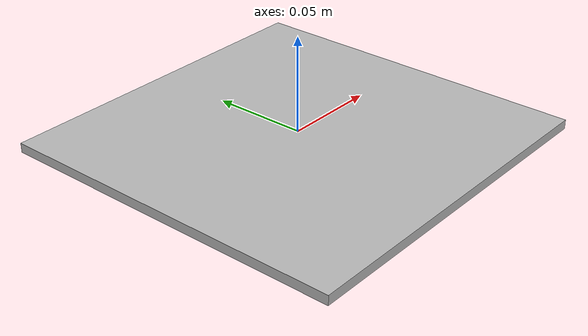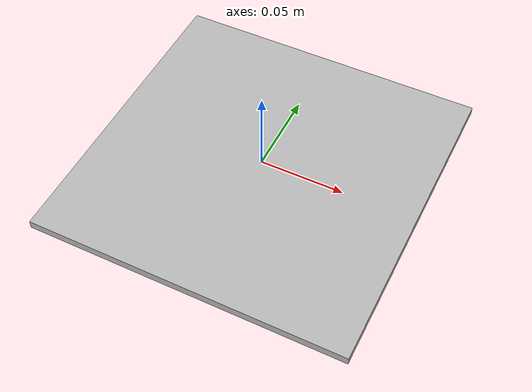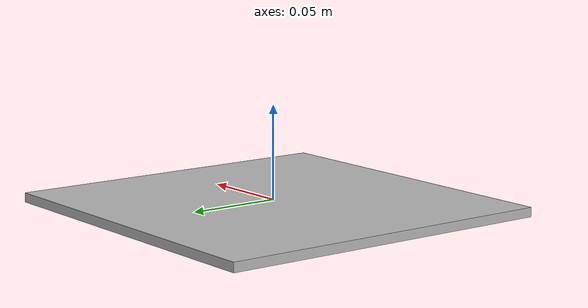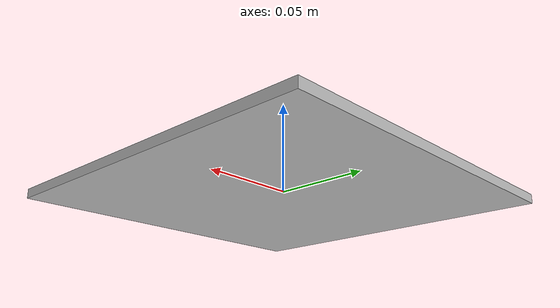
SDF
<?xml version='1.0'?>

<sdf version="1.5">
  <model name="tag36_11_00067">
    <pose>0 0 0 0 0 0</pose>
    <static>true</static>
    <link name="tag36_11_00067">
      <visual name='tag36_11_00067'>
        <pose>0 0 0 0 0 0</pose>
          <geometry>
            <mesh>
              <uri>model://tag36_11_00067/meshes/tag36_11_00067.dae</uri>
            </mesh>
          </geometry>
      </visual>
    </link>
  </model>
</sdf>
